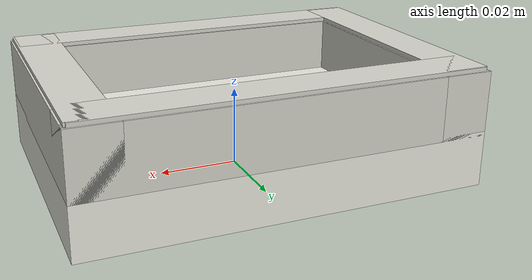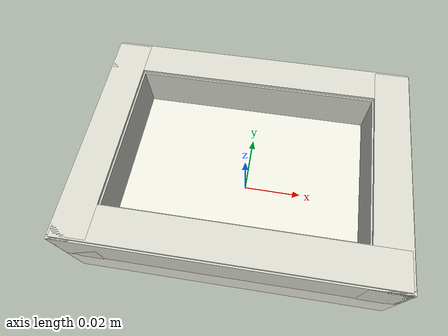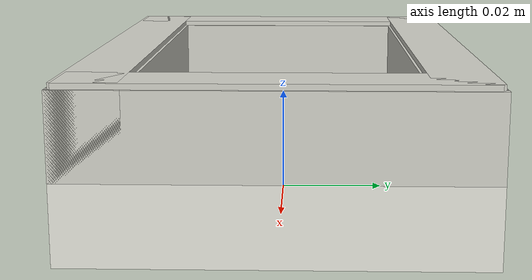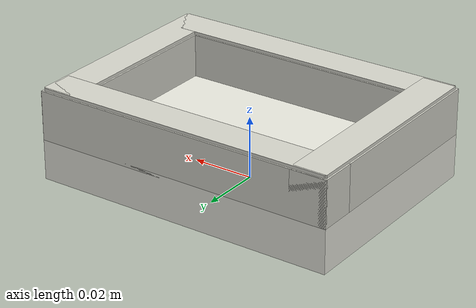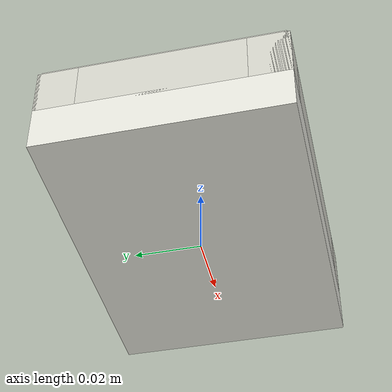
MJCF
<mujoco model="foam_board_large">
  <asset>
    <material name="foam_white" rgba="0.92 0.92 0.88 1" specular="0.05" shininess="0.04" />
    <material name="foam_edge" rgba="0.84 0.84 0.80 1" specular="0.04" shininess="0.03" />
  </asset>
  <worldbody>
    <body>
      <body name="object">
        <geom name="foam_large_collision" type="box" pos="0 0 0.007" size="0.050 0.036 0.007" material="foam_white" group="0" friction="1.0 0.3 0.1" />
        <geom name="foam_large_edge_right_collision" type="box" pos="0.044 0 0.021" size="0.006 0.036 0.008" material="foam_edge" group="0" friction="1.0 0.3 0.1" />
        <geom name="foam_large_edge_left_collision" type="box" pos="-0.044 0 0.021" size="0.006 0.036 0.008" material="foam_edge" group="0" friction="1.0 0.3 0.1" />
        <geom name="foam_large_edge_front_collision" type="box" pos="0 -0.030 0.021" size="0.050 0.006 0.008" material="foam_edge" group="0" friction="1.0 0.3 0.1" />
        <geom name="foam_large_edge_back_collision" type="box" pos="0 0.030 0.021" size="0.050 0.006 0.008" material="foam_edge" group="0" friction="1.0 0.3 0.1" />
        <geom name="foam_large_visual" type="box" pos="0 0 0.008" size="0.049 0.035 0.007" material="foam_white" group="1" contype="0" conaffinity="0" />
        <geom name="foam_large_edge_right_visual" type="box" pos="0.044 0 0.022" size="0.0055 0.035 0.008" material="foam_edge" group="1" contype="0" conaffinity="0" />
        <geom name="foam_large_edge_left_visual" type="box" pos="-0.044 0 0.022" size="0.0055 0.035 0.008" material="foam_edge" group="1" contype="0" conaffinity="0" />
        <geom name="foam_large_edge_front_visual" type="box" pos="0 -0.030 0.022" size="0.049 0.0055 0.008" material="foam_edge" group="1" contype="0" conaffinity="0" />
        <geom name="foam_large_edge_back_visual" type="box" pos="0 0.030 0.022" size="0.049 0.0055 0.008" material="foam_edge" group="1" contype="0" conaffinity="0" />
      </body>
      <site rgba="0 0 0 0" size="0.005" pos="0 0 -0.004" name="bottom_site" />
      <site rgba="0 0 0 0" size="0.005" pos="0 0 0.032" name="top_site" />
      <site rgba="0 0 0 0" size="0.050" pos="0.050 0.050 0" name="horizontal_radius_site" />
    </body>
  </worldbody>
</mujoco>
